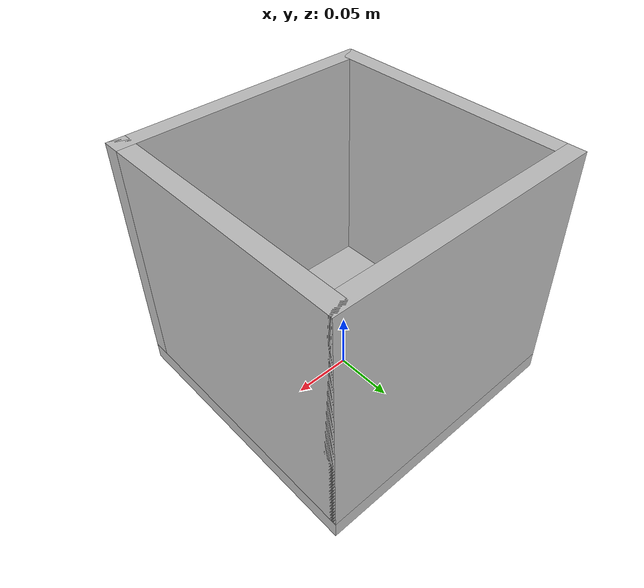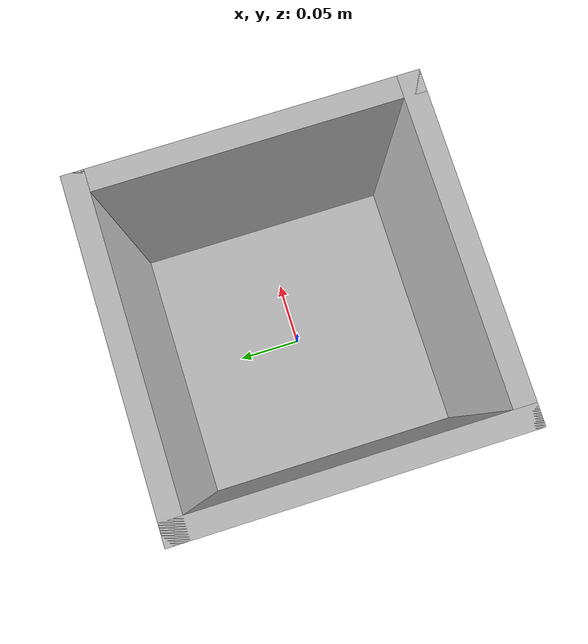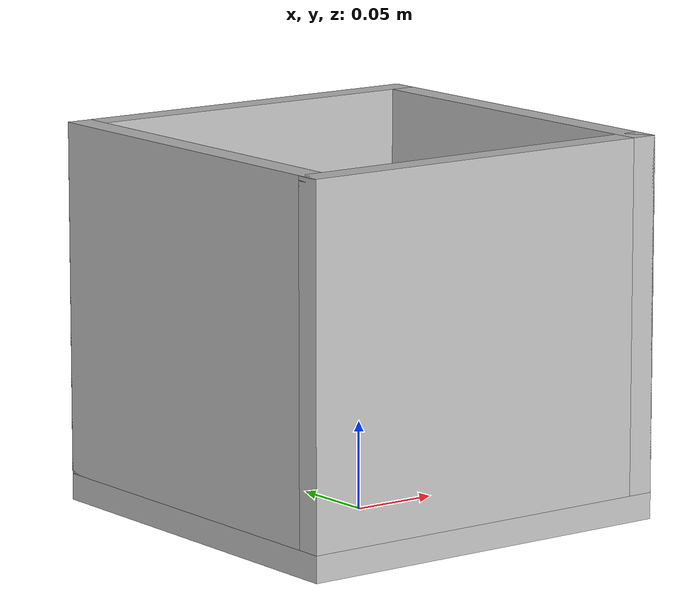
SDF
<?xml version="1.0"?>
<sdf version="1.6">
  <model name="basket">
    <static>true</static>

    <!-- 底部 (23cm × 23cm × 1.5cm) -->
    <link name="bottom">
      <collision name="collision">
        <geometry>
          <box>
            <size>0.23 0.23 0.015</size>
          </box>
        </geometry>
      </collision>
      <visual name="visual">
        <geometry>
          <box>
            <size>0.23 0.23 0.015</size>
          </box>
        </geometry>
        <material>
          <ambient>0.75 0.75 0.75 1</ambient>
          <diffuse>0.75 0.75 0.75 1</diffuse>
          <specular>0.5 0.5 0.5 1</specular>
        </material>
      </visual>
      <pose>0 0 0.0075 0 0 0</pose>
    </link>

    <!-- 前侧 (23cm × 1.5cm × 20cm) -->
    <link name="front">
      <collision name="collision">
        <geometry>
          <box>
            <size>0.23 0.015 0.20</size>
          </box>
        </geometry>
      </collision>
      <visual name="visual">
        <geometry>
          <box>
            <size>0.23 0.015 0.20</size>
          </box>
        </geometry>
        <material>
          <ambient>0.75 0.75 0.75 1</ambient>
          <diffuse>0.75 0.75 0.75 1</diffuse>
          <specular>0.5 0.5 0.5 1</specular>
        </material>
      </visual>
      <pose>0 0.1075 0.115 0 0 0</pose>
    </link>

    <!-- 后侧 (23cm × 1.5cm × 20cm) -->
    <link name="back">
      <collision name="collision">
        <geometry>
          <box>
            <size>0.23 0.015 0.20</size>
          </box>
        </geometry>
      </collision>
      <visual name="visual">
        <geometry>
          <box>
            <size>0.23 0.015 0.20</size>
          </box>
        </geometry>
        <material>
          <ambient>0.75 0.75 0.75 1</ambient>
          <diffuse>0.75 0.75 0.75 1</diffuse>
          <specular>0.5 0.5 0.5 1</specular>
        </material>
      </visual>
      <pose>0 -0.1075 0.115 0 0 0</pose>
    </link>

    <!-- 左侧 (1.5cm × 23cm × 20cm) -->
    <link name="left">
      <collision name="collision">
        <geometry>
          <box>
            <size>0.015 0.23 0.20</size>
          </box>
        </geometry>
      </collision>
      <visual name="visual">
        <geometry>
          <box>
            <size>0.015 0.23 0.20</size>
          </box>
        </geometry>
        <material>
          <ambient>0.75 0.75 0.75 1</ambient>
          <diffuse>0.75 0.75 0.75 1</diffuse>
          <specular>0.5 0.5 0.5 1</specular>
        </material>
      </visual>
      <pose>-0.1075 0 0.115 0 0 0</pose>
    </link>

    <!-- 右侧 (1.5cm × 23cm × 20cm) -->
    <link name="right">
      <collision name="collision">
        <geometry>
          <box>
            <size>0.015 0.23 0.20</size>
          </box>
        </geometry>
      </collision>
      <visual name="visual">
        <geometry>
          <box>
            <size>0.015 0.23 0.20</size>
          </box>
        </geometry>
        <material>
          <ambient>0.75 0.75 0.75 1</ambient>
          <diffuse>0.75 0.75 0.75 1</diffuse>
          <specular>0.5 0.5 0.5 1</specular>
        </material>
      </visual>
      <pose>0.1075 0 0.115 0 0 0</pose>
    </link>

  </model>
</sdf>
